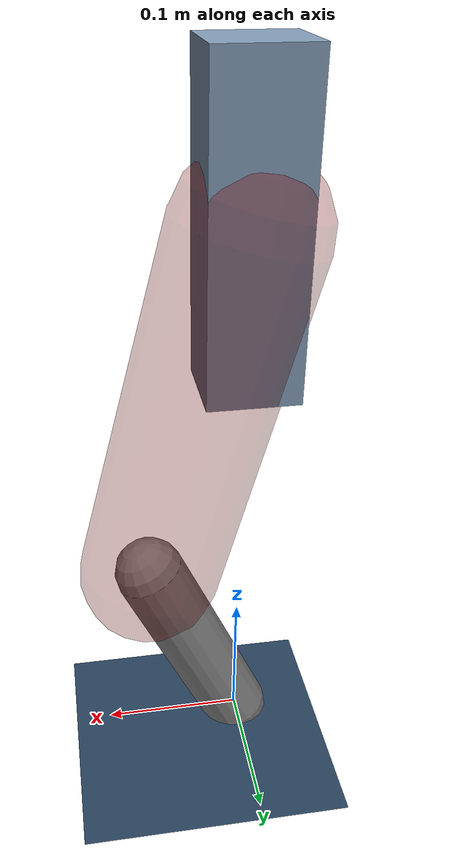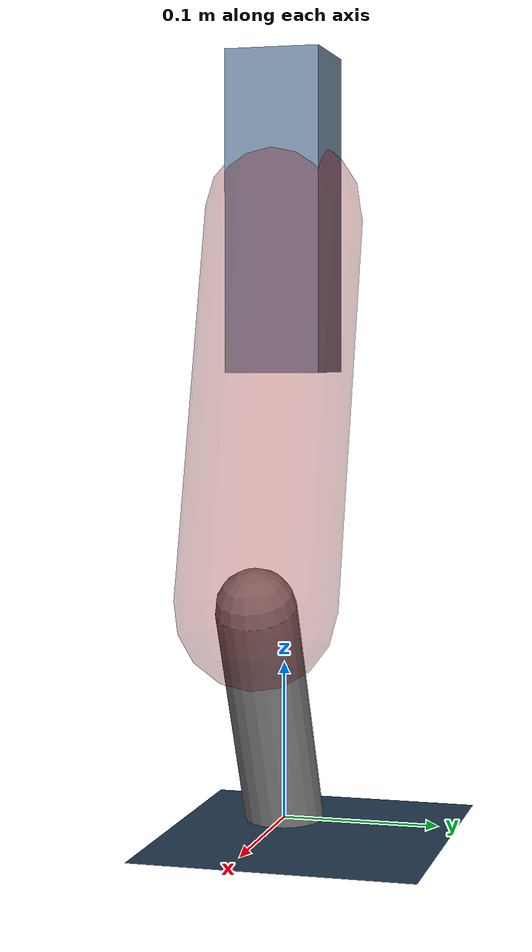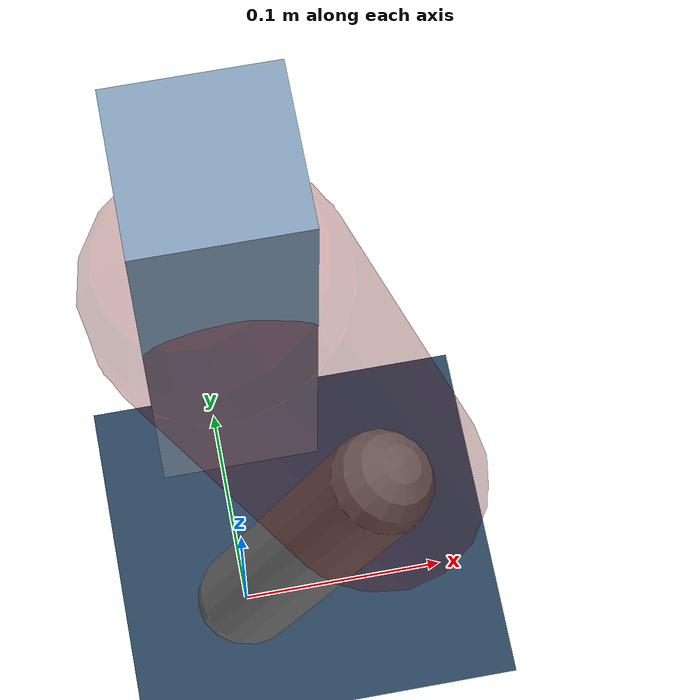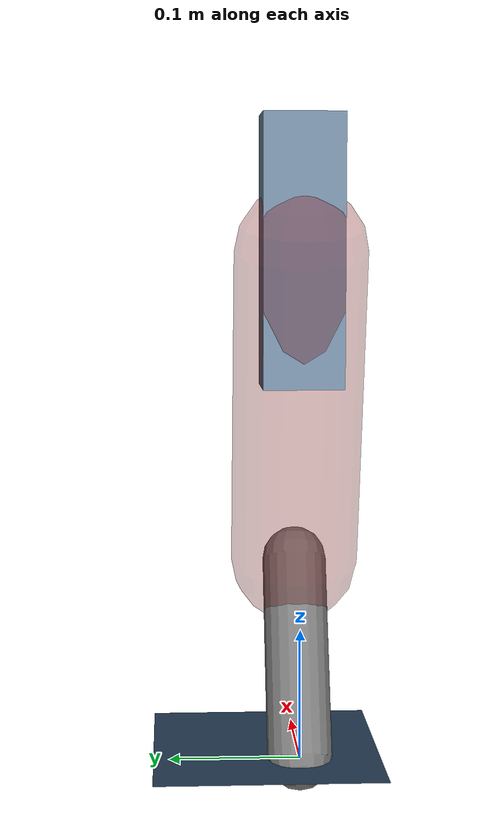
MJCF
<mujoco model="Hopper2D">
	<compiler inertiafromgeom="true" angle="radian" />
	<option timestep="0.001" integrator="implicit" cone="elliptic" solver="Newton" tolerance="1e-10" />

	<default>
		<geom contype="1" conaffinity="1" condim="3" friction="2 0.005 0.0001" solref="0.005 1" />
		<joint limited="true" damping="0.1" />
	</default>

	<asset>
		<texture name="skybox" type="skybox" builtin="gradient" rgb1=".4 .6 .8" rgb2="0 0 0" width="800" height="800" />
		<texture name="grid" type="2d" builtin="checker" rgb1=".1 .2 .3" rgb2=".2 .3 .4" width="300" height="300" mark="edge" markrgb=".2 .3 .4" />
		<material name="ground" texture="grid" texrepeat="1 1" texuniform="true" reflectance="0.1" />
		<material name="leg" rgba="0.5 0.6 0.7 1" />
	</asset>

	<worldbody>

		<geom name="floor" type="plane" size="5 5 0.25" material="ground" />

		<light directional="false" diffuse="0.8 0.8 0.8" specular="0.3 0.3 0.3" pos="0 0 2" dir="0 0 -1" />
		<light mode="targetbodycom" target="base" directional="false" diffuse="0.8 0.8 0.8" specular="0.3 0.3 0.3" pos="0 0 2" dir="0 0 -1" />

		<camera name="fixed" pos="0 -2 1" xyaxes="1 0 0 0 0 1" />
		<camera name="tracking" mode="trackcom" pos="0 -3 1" />

		<body name="root" pos="0 0 0.38616962776624575">
			<joint name="slide_x" type="slide" axis="1 0 0" range="-100 100" />
			<joint name="slide_z" type="slide" axis="0 0 1" range="0 10" />

			<body name="base" pos="0 0 0">
				<geom name="torso" type="box" size="0.03 0.03 0.1" mass="1.919" material="leg" />

				<body name="link1" pos="0 0 0" euler="0 1.3089382659640978 0">
					<joint type="hinge" axis="0 -1 0" pos="0 0 0" name="hinge1" limited="true" range="-3.14 3.14" stiffness="0" damping="0.1" />
					<geom name="thigh" type="capsule" fromto="0 0 0 0.25137894192209853 0 0" size="0.05" rgba="0.5 0 0 0.3" mass="0.8599852489974562" />

					<body name="link2" pos="0.25137894192209853 0 0" euler="0 0.6879781679785052 0">
						<joint type="hinge" axis="0 -1 0" pos="0 0 0" name="hinge2" limited="true" range="-3.14 3.14" stiffness="0" damping="0.1" />
						<geom name="shank" type="capsule" fromto="0 0 0 0.15743878960405733 0 0" size="0.025" mass="0.3642949106436516" />

					</body>
				</body>
			</body>
		</body>
	</worldbody>

	<actuator>
		<motor name="torque1" joint="hinge1" ctrlrange="-57.93805110429589 57.93805110429589" ctrllimited="true" gear="1" />
		<motor name="torque2" joint="hinge2" ctrlrange="-45.030475739707576 45.030475739707576" ctrllimited="true" gear="1" />
	</actuator>
</mujoco>
